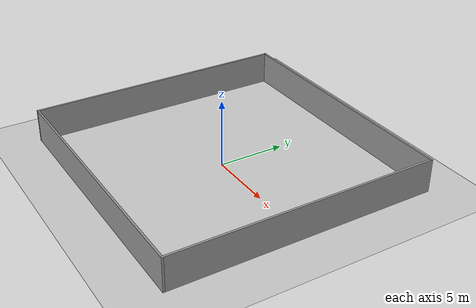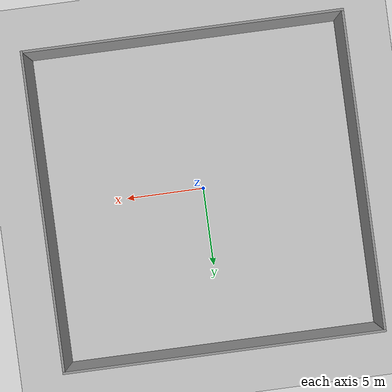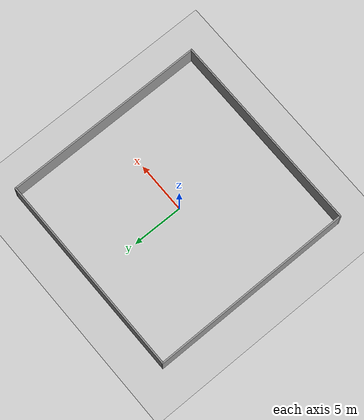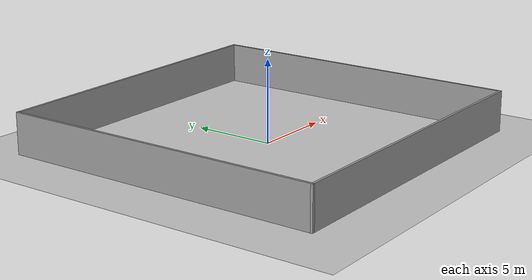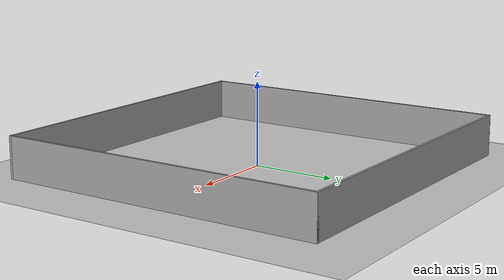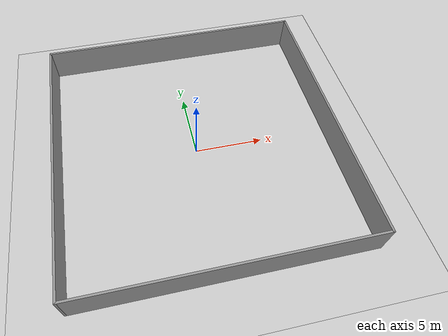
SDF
<sdf version="1.6">
 <world name="default">
  <light name="sun" type="directional">
   <pose>0 0 1000 0 -0 0</pose>
   <diffuse>0.8 0.8 0.8 1</diffuse>
   <specular>0.1 0.1 0.1 1</specular>
   <attenuation>
    <range>1000</range>
    <constant>0.9</constant>
    <linear>0.01</linear>
    <quadratic>0.001</quadratic>
   </attenuation>
   <direction>-0.5 0.5 -1</direction>
  </light>
  <model name="ground_plane">
   <static>1</static>
   <link name="link">
    <collision name="collision">
     <geometry><plane><normal>0 0 1</normal><size>100 100</size></plane></geometry>
     <surface><friction><ode><mu>100</mu><mu2>50</mu2></ode></friction></surface>
    </collision>
    <visual name="visual">
     <cast_shadows>0</cast_shadows>
     <geometry><plane><normal>0 0 1</normal><size>100 100</size></plane></geometry>
     <material>
      <script><uri>file://media/materials/scripts/gazebo.material</uri><name>Gazebo/Grey</name></script>
     </material>
    </visual>
   </link>
  </model>
  <gravity>0 0 -9.8</gravity>
  <magnetic_field>6e-06 2.3e-05 -4.2e-05</magnetic_field>
  <atmosphere type="adiabatic"/>
  <physics name="default_physics" default="0" type="ode">
   <max_step_size>0.001</max_step_size>
   <real_time_factor>1</real_time_factor>
   <real_time_update_rate>1000</real_time_update_rate>
  </physics>
  <scene><ambient>0.4 0.4 0.4 1</ambient><background>0.7 0.7 0.7 1</background><shadows>1</shadows></scene>
  <spherical_coordinates>
   <surface_model>EARTH_WGS84</surface_model>
   <latitude_deg>0</latitude_deg>
   <longitude_deg>0</longitude_deg>
   <elevation>0</elevation>
   <heading_deg>0</heading_deg>
  </spherical_coordinates>
  <model name="NamedLocations"><static>true</static><link name="DefaultStart"/></model>
  <model name="20x20_walls">
   <pose>0.044518 0.176112 0 0 -0 0</pose>
   <link name="Wall_1">
    <collision name="Wall_1_Collision">
     <geometry><box><size>20 0.15 2.5</size></box></geometry>
     <pose>0 0 1.25 0 -0 0</pose>
    </collision>
    <visual name="Wall_1_Visual">
     <pose>0 0 1.25 0 -0 0</pose>
     <geometry><box><size>20 0.15 2.5</size></box></geometry>
     <material>
      <script><uri>file://media/materials/scripts/gazebo.material</uri><name>Gazebo/Grey</name></script>
      <ambient>0.976471 0.992157 1 1</ambient>
     </material>
     <meta><layer>0</layer></meta>
    </visual>
    <pose>0 9.925 0 0 -0 0</pose>
   </link>
   <link name="Wall_3">
    <collision name="Wall_3_Collision">
     <geometry><box><size>20 0.15 2.5</size></box></geometry>
     <pose>0 0 1.25 0 -0 0</pose>
    </collision>
    <visual name="Wall_3_Visual">
     <pose>0 0 1.25 0 -0 0</pose>
     <geometry><box><size>20 0.15 2.5</size></box></geometry>
     <material>
      <script><uri>file://media/materials/scripts/gazebo.material</uri><name>Gazebo/Grey</name></script>
      <ambient>0.976471 0.992157 1 1</ambient>
     </material>
     <meta><layer>0</layer></meta>
    </visual>
    <pose>9.925 0 0 0 0 -1.5708</pose>
   </link>
   <link name="Wall_4">
    <collision name="Wall_4_Collision">
     <geometry><box><size>20 0.15 2.5</size></box></geometry>
     <pose>0 0 1.25 0 -0 0</pose>
    </collision>
    <visual name="Wall_4_Visual">
     <pose>0 0 1.25 0 -0 0</pose>
     <geometry><box><size>20 0.15 2.5</size></box></geometry>
     <material>
      <script><uri>file://media/materials/scripts/gazebo.material</uri><name>Gazebo/Grey</name></script>
      <ambient>0.976471 0.992157 1 1</ambient>
     </material>
     <meta><layer>0</layer></meta>
    </visual>
    <pose>0 -9.925 0 0 -0 3.14159</pose>
   </link>
   <link name="Wall_5">
    <collision name="Wall_5_Collision">
     <geometry><box><size>20 0.15 2.5</size></box></geometry>
     <pose>0 0 1.25 0 -0 0</pose>
    </collision>
    <visual name="Wall_5_Visual">
     <pose>0 0 1.25 0 -0 0</pose>
     <geometry><box><size>20 0.15 2.5</size></box></geometry>
     <material>
      <script><uri>file://media/materials/scripts/gazebo.material</uri><name>Gazebo/Grey</name></script>
      <ambient>0.976471 0.992157 1 1</ambient>
     </material>
     <meta><layer>0</layer></meta>
    </visual>
    <pose>-9.925 0 0 0 -0 1.5708</pose>
   </link>
   <static>1</static>
  </model>
 </world>
</sdf>
